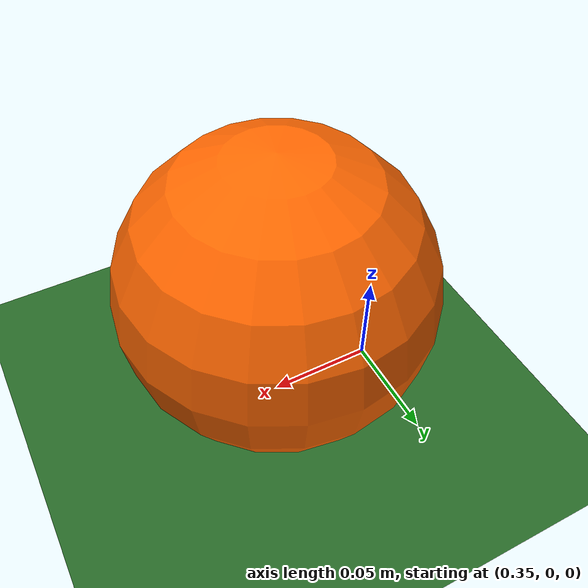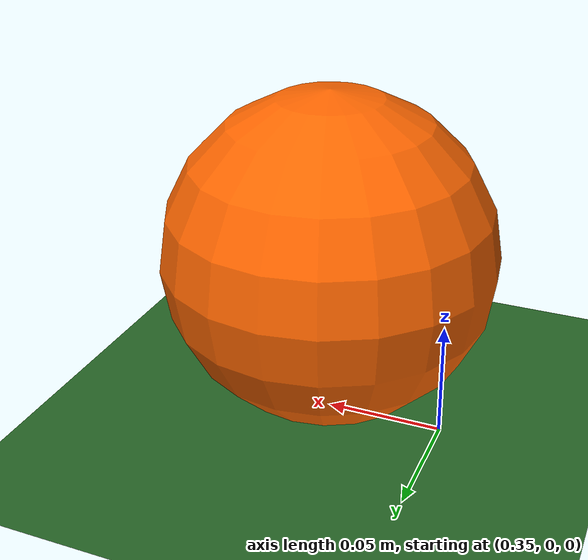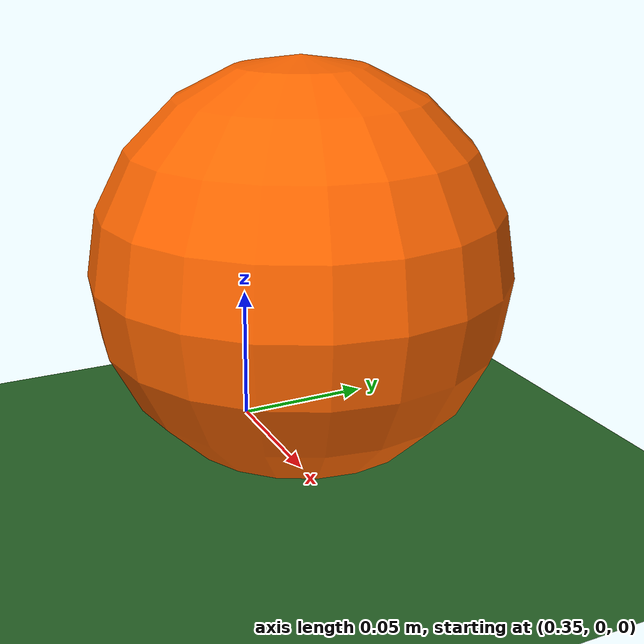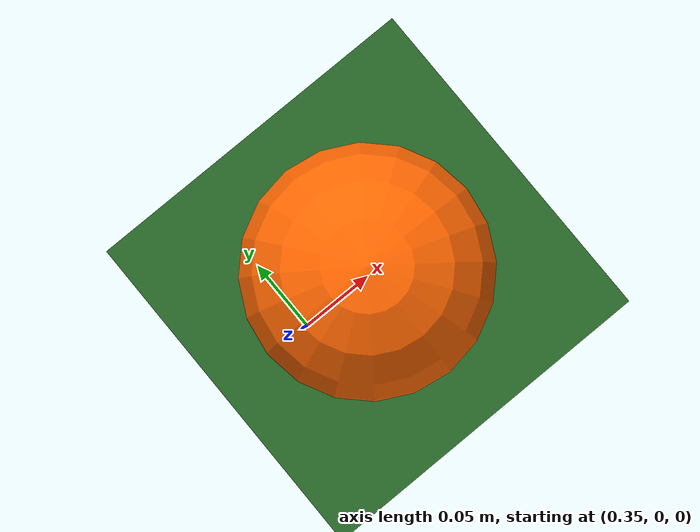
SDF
<?xml version="1.0"?>
<sdf version="1.6">
  <world name="nao6_model_inspection">
    <gravity>0 0 -9.81</gravity>
    <physics type="ode"><max_step_size>0.001</max_step_size></physics>
    <light name="sun" type="directional">
      <pose>0 0 10 0 0 0</pose><diffuse>0.8 0.8 0.8 1</diffuse>
      <direction>-0.5 0.1 -0.9</direction>
    </light>
    <model name="ground">
      <static>true</static>
      <link name="plane">
        <collision name="surface"><geometry><plane><normal>0 0 1</normal><size>10 10</size></plane></geometry></collision>
        <visual name="surface"><geometry><plane><normal>0 0 1</normal><size>10 10</size></plane></geometry>
          <material><ambient>0.15 0.4 0.15 1</ambient><diffuse>0.15 0.4 0.15 1</diffuse></material>
        </visual>
      </link>
    </model>
    <!-- Provisional ball parameters, not a calibrated rolling/kicking model. -->
    <model name="ball">
      <pose>0.4 0 0.075 0 0 0</pose>
      <link name="ball_link">
        <inertial><mass>0.04</mass><inertia><ixx>0.0000784</ixx><iyy>0.0000784</iyy><izz>0.0000784</izz></inertia></inertial>
        <collision name="ball_collision"><geometry><sphere><radius>0.07</radius></sphere></geometry></collision>
        <visual name="ball_visual"><geometry><sphere><radius>0.07</radius></sphere></geometry>
          <material><ambient>1 0.4 0 1</ambient><diffuse>1 0.4 0 1</diffuse></material>
        </visual>
      </link>
    </model>
  </world>
</sdf>
